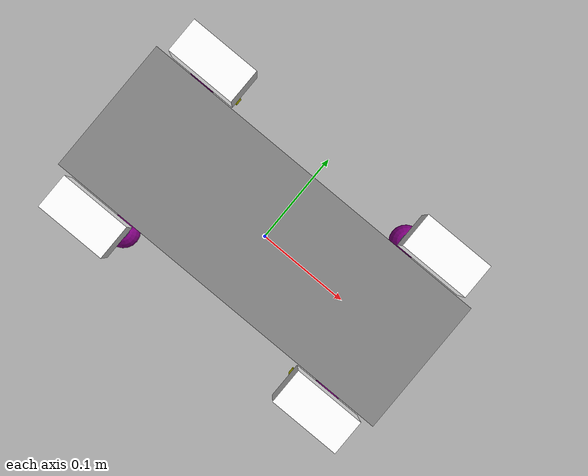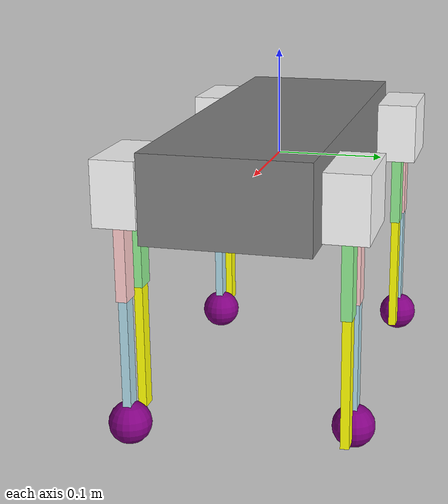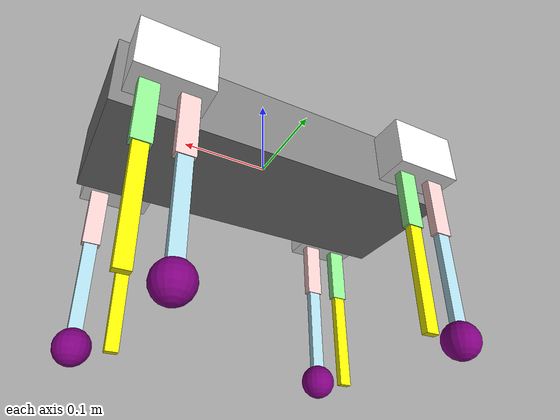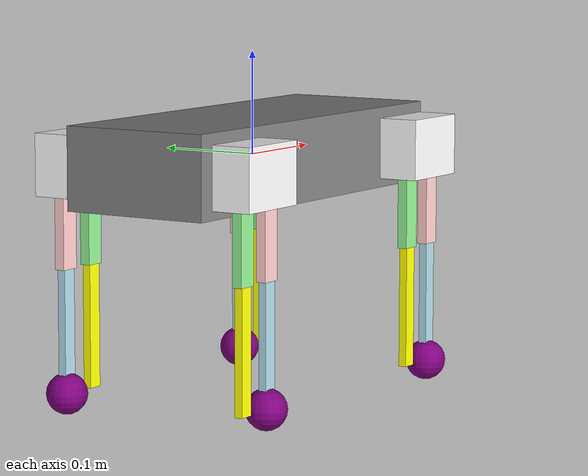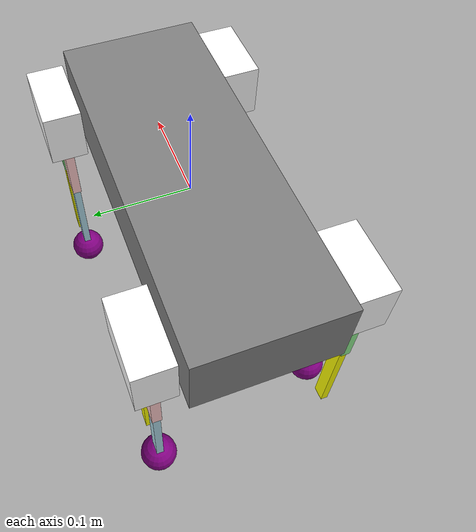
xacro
<?xml version="1.0"?>
<robot name="my_quadruped" xmlns:xacro="http://www.ros.org/wiki/xacro">

    <xacro:include filename="const.xacro"/>
    <xacro:include filename="leg.xacro"/>

    <link name="base_link">
        <visual>
            <origin xyz="0 0 0" rpy="0 0 0"/>
            <geometry>
                <box size="0.4 0.15 0.08"/>
            </geometry>
            <material name="gray"><color rgba="0.502 0.502 0.502 1"/></material>
        </visual>
    </link>

    <xacro:leg name="lf" pos_x="${hip_offset_x}" pos_y="${hip_offset_y}" mirror="1" />
    <xacro:leg name="rf" pos_x="${hip_offset_x}" pos_y="${-hip_offset_y}" mirror="-1" />
    <xacro:leg name="lh" pos_x="${-hip_offset_x}" pos_y="${hip_offset_y}" mirror="1" />
    <xacro:leg name="rh" pos_x="${-hip_offset_x}" pos_y="${-hip_offset_y}" mirror="-1" />

</robot>

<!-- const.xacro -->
<robot xmlns:xacro="http://www.ros.org/wiki/xacro">

    <xacro:property name="hip_offset_x" value="0.15" />
    <xacro:property name="hip_offset_y" value="0.1" />

    <xacro:property name="motor_spacing" value="0.04" />

    <xacro:property name="upper_link_length" value="0.10" />

    <xacro:property name="lower_link_length" value="0.12" />

</robot>

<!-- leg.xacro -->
<robot xmlns:xacro="http://www.ros.org/wiki/xacro">

    <xacro:macro name="leg" params="name pos_x pos_y mirror">

        <joint name="${name}_abad_joint" type="revolute">
            <origin xyz="${pos_x} ${pos_y} 0" rpy="0 0 0"/>
            <parent link="base_link"/>
            <child link="${name}_hip_base_link"/>
            <axis xyz="1 0 0"/>
            <limit lower="-0.7" upper="0.7" effort="10.0" velocity="10.0"/>
        </joint>

        <link name="${name}_hip_base_link">
            <visual>
                <origin xyz="0 0 0" rpy="0 0 0"/>
                <geometry>
                    <box size="0.08 0.04 0.06"/>
                </geometry>
                <material name="white"><color rgba="1 1 1 1"/></material>
            </visual>
        </link>

        <joint name="${name}_motor_l_joint" type="revolute">
            <origin xyz="${-mirror * motor_spacing/2} 0 0" rpy="0 0 0"/>
            <parent link="${name}_hip_base_link"/>
            <child link="${name}_upper_l_link"/>
            <axis xyz="0 1 0"/>
            <limit lower="-3.14" upper="3.14" effort="10.0" velocity="10.0"/>
        </joint>

        <link name="${name}_upper_l_link">
            <visual>
                <origin xyz="0 0 ${-upper_link_length/2}" rpy="0 0 0"/>
                <geometry>
                    <box size="0.02 0.01 ${upper_link_length}"/>
                </geometry>
                <material name="red"><color rgba="1.0 0.8 0.796 1"/></material>
            </visual>
        </link>

        <joint name="${name}_knee_l_joint" type="revolute">
            <origin xyz="0 0 ${-upper_link_length}" rpy="0 0 0"/>
            <parent link="${name}_upper_l_link"/>
            <child link="${name}_lower_l_link"/>
            <axis xyz="0 1 0"/>
            <limit lower="-3.14" upper="3.14" effort="10.0" velocity="10.0"/>
        </joint>

        <link name="${name}_lower_l_link">
            <visual>
                <origin xyz="0 0 ${-lower_link_length/2}" rpy="0 0 0"/>
                <geometry>
                    <box size="0.015 0.008 ${lower_link_length}"/>
                </geometry>
                <material name="blue"><color rgba="0.678 0.847 0.902 1"/></material>
            </visual>
        </link>

        <joint name="${name}_motor_r_joint" type="revolute">
            <origin xyz="${mirror * motor_spacing/2} 0 0" rpy="0 0 0"/>
            <parent link="${name}_hip_base_link"/>
            <child link="${name}_upper_r_link"/>
            <axis xyz="0 1 0"/>
            <limit lower="-3.14" upper="3.14" effort="10.0" velocity="10.0"/>
        </joint>

        <link name="${name}_upper_r_link">
            <visual>
                <origin xyz="0 0 ${-upper_link_length/2}" rpy="0 0 0"/>
                <geometry>
                    <box size="0.02 0.01 ${upper_link_length}"/>
                </geometry>
                <material name="green"><color rgba="0.565 0.933 0.565 1"/></material>
            </visual>
        </link>

        <joint name="${name}_knee_r_joint" type="revolute">
            <origin xyz="0 0 ${-upper_link_length}" rpy="0 0 0"/>
            <parent link="${name}_upper_r_link"/>
            <child link="${name}_lower_r_link"/>
            <axis xyz="0 1 0"/>
            <limit lower="-3.14" upper="3.14" effort="10.0" velocity="10.0"/>
        </joint>

        <link name="${name}_lower_r_link">
            <visual>
                <origin xyz="0 0 ${-lower_link_length/2}" rpy="0 0 0"/>
                <geometry>
                    <box size="0.015 0.008 ${lower_link_length}"/>
                </geometry>
                <material name="yellow"><color rgba="1 1 0 1"/></material>
            </visual>
        </link>

        <joint name="${name}_foot_joint" type="fixed">
            <origin xyz="0 0 ${-lower_link_length}" rpy="0 0 0"/>
            <parent link="${name}_lower_l_link"/>
            <child link="${name}_foot_link"/>
        </joint>

        <link name="${name}_foot_link">
             <visual>
                <geometry>
                    <sphere radius="0.02"/>
                </geometry>
                <material name="purple"><color rgba="0.502 0.0 0.502 1"/></material>
            </visual>
        </link>

    </xacro:macro>
</robot>
